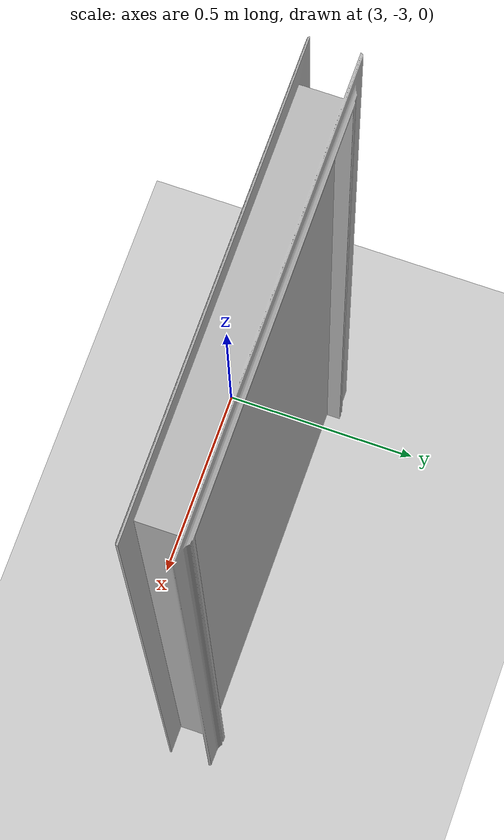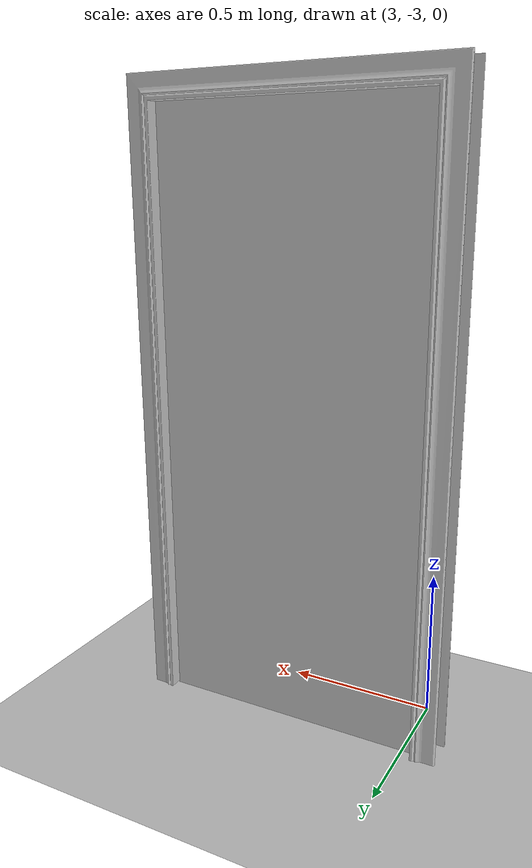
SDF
<sdf version="1.6">
 <world name="default">
  <physics name="default_physics" default="0" type="ode">
   <real_time_update_rate>500</real_time_update_rate>
   <max_step_size>0.002</max_step_size>
   <ode>
    <solver>
     <type>quick</type>
     <iters>100</iters>
     <sor>1.3</sor>
     <use_dynamic_moi_rescaling>0</use_dynamic_moi_rescaling>
    </solver>
    <constraints>
     <cfm>0.0001</cfm>
     <erp>0.2</erp>
     <contact_max_correcting_vel>100</contact_max_correcting_vel>
     <contact_surface_layer>0.001</contact_surface_layer>
    </constraints>
   </ode>
   <real_time_factor>1</real_time_factor>
  </physics>
  <light name="sun" type="directional">
   <pose>0 0 10 0 -0 0</pose>
   <diffuse>0.8 0.8 0.8 1</diffuse>
   <specular>0.1 0.1 0.1 1</specular>
   <attenuation>
    <range>1000</range>
    <constant>0.9</constant>
    <linear>0.01</linear>
    <quadratic>0.001</quadratic>
   </attenuation>
   <direction>-0.5 0.5 -1</direction>
  </light>
  <model name="ground_plane">
   <static>1</static>
   <link name="link">
    <collision name="collision">
     <geometry><plane><normal>0 0 1</normal><size>100 100</size></plane></geometry>
     <surface><friction><ode><mu>100</mu><mu2>50</mu2></ode></friction></surface>
    </collision>
    <visual name="visual">
     <cast_shadows>0</cast_shadows>
     <geometry><plane><normal>0 0 1</normal><size>100 100</size></plane></geometry>
     <material>
      <script><uri>file://media/materials/scripts/gazebo.material</uri><name>Gazebo/Grey</name></script>
     </material>
    </visual>
   </link>
  </model>
  <gravity>0 0 -9.8</gravity>
  <magnetic_field>6e-06 2.3e-05 -4.2e-05</magnetic_field>
  <atmosphere type="adiabatic"/>
  <scene><ambient>0.4 0.4 0.4 1</ambient><background>0.7 0.7 0.7 1</background><shadows>1</shadows></scene>
  <spherical_coordinates>
   <surface_model>EARTH_WGS84</surface_model>
   <latitude_deg>0</latitude_deg>
   <longitude_deg>0</longitude_deg>
   <elevation>0</elevation>
   <heading_deg>0</heading_deg>
  </spherical_coordinates>
  <model name="door">
   <pose>2.88334 -2.71124 -2.2e-05 1.5708 -0 2e-06</pose>
   <link name="door_frame">
    <inertial>
     <pose>0.525 1 0.05 0 -0 0</pose>
     <mass>30</mass>
     <inertia><ixx>1</ixx><ixy>0</ixy><ixz>0</ixz><iyy>1</iyy><iyz>0</iyz><izz>1</izz></inertia>
    </inertial>
    <visual name="visual_frame">
     <geometry><mesh><uri>model://door/meshes/frame.stl</uri><scale>0.1 0.1 0.1</scale></mesh></geometry>
    </visual>
    <collision name="collision_frame">
     <geometry><mesh><uri>model://door/meshes/frame.stl</uri><scale>0.1 0.1 0.1</scale></mesh></geometry>
    </collision>
   </link>
   <link name="door_body">
    <inertial>
     <pose>0.525 1 0.05 0 -0 0</pose>
     <mass>1</mass>
     <inertia><ixx>0.083</ixx><ixy>0</ixy><ixz>0</ixz><iyy>0.083</iyy><iyz>0</iyz><izz>0.083</izz></inertia>
    </inertial>
    <collision name="collision_door">
     <pose>0.525 0.995 0.05 0 -0 0</pose>
     <geometry><box><size>0.9 1.99 0.03</size></box></geometry>
    </collision>
    <visual name="visual_door">
     <pose>0.525 0.995 0.05 0 -0 0</pose>
     <geometry><box><size>0.9 1.99 0.03</size></box></geometry>
    </visual>
   </link>
   <link name="door_handle">
    <inertial>
     <pose>0.8 1 0.15 -3.14159 -0 0</pose>
     <mass>1</mass>
     <inertia><ixx>1</ixx><ixy>0</ixy><ixz>0</ixz><iyy>1</iyy><iyz>0</iyz><izz>1</izz></inertia>
    </inertial>
    <visual name="visual_handle">
     <pose>0.9 1 0.15 0 3.14 1.57159</pose>
     <geometry><mesh><uri>model://door/meshes/handle.stl</uri><scale>0.002 0.002 0.002</scale></mesh></geometry>
    </visual>
    <collision name="collision_handle">
     <pose>0.9 1 0.15 0 3.14 1.57159</pose>
     <geometry><mesh><uri>model://door/meshes/handle.stl</uri><scale>0.002 0.002 0.002</scale></mesh></geometry>
    </collision>
   </link>
   <joint name="door_body_handle" type="revolute">
    <parent>door_body</parent>
    <child>door_handle</child>
    <pose>0.075 0 0.065 0 -0 0</pose>
    <axis>
     <xyz>0 1 0</xyz>
     <dynamics>
      <damping>0.1</damping>
      <friction>0.1</friction>
      <spring_reference>0</spring_reference>
      <spring_stiffness>0</spring_stiffness>
     </dynamics>
     <limit><lower>0</lower><upper>0</upper></limit>
     <use_parent_model_frame>1</use_parent_model_frame>
    </axis>
   </joint>
   <joint name="door_hinge" type="revolute">
    <parent>door_frame</parent>
    <child>door_body</child>
    <pose>0.075 0 0.065 0 -0 0</pose>
    <axis>
     <xyz>0 1 0</xyz>
     <dynamics>
      <damping>0.1</damping>
      <friction>0.1</friction>
      <spring_reference>0</spring_reference>
      <spring_stiffness>0</spring_stiffness>
     </dynamics>
     <limit><lower>-1.57</lower><upper>1.57</upper><velocity>1</velocity></limit>
     <use_parent_model_frame>1</use_parent_model_frame>
    </axis>
   </joint>
   <joint name="world_joint" type="revolute">
    <child>door_frame</child>
    <parent>world</parent>
    <axis>
     <limit><lower>0</lower><upper>0</upper></limit>
     <xyz>0 1 0</xyz>
     <dynamics>
      <damping>1</damping>
      <spring_reference>0</spring_reference>
      <spring_stiffness>0</spring_stiffness>
     </dynamics>
     <use_parent_model_frame>1</use_parent_model_frame>
     <use_parent_model_frame>1</use_parent_model_frame>
    </axis>
    <physics><ode><cfm_damping>1</cfm_damping><limit><cfm>0</cfm><erp>0.2</erp></limit></ode></physics>
   </joint>
  </model>
 </world>
</sdf>
